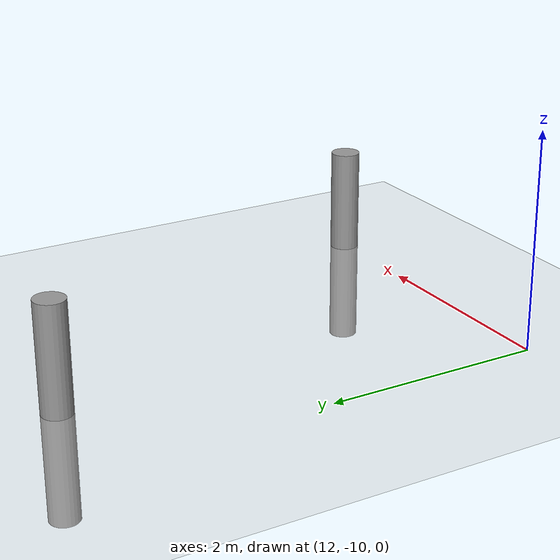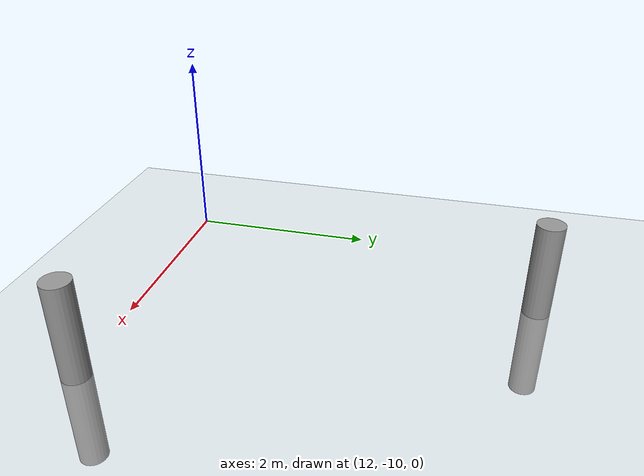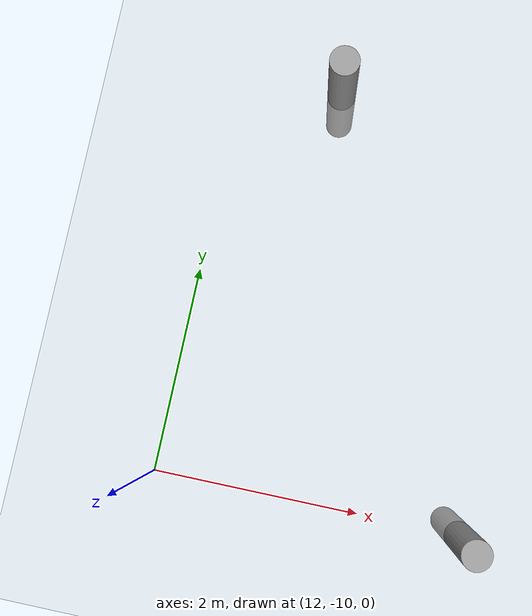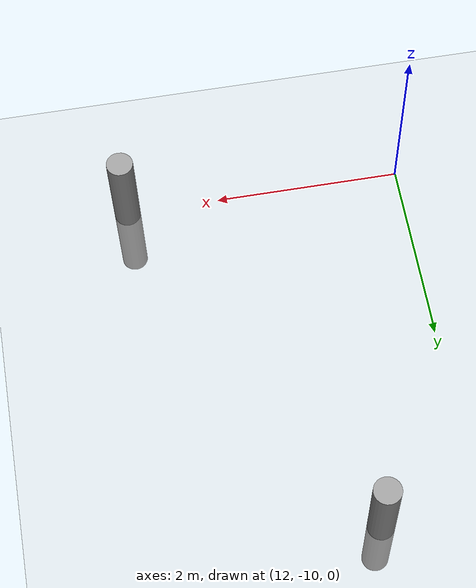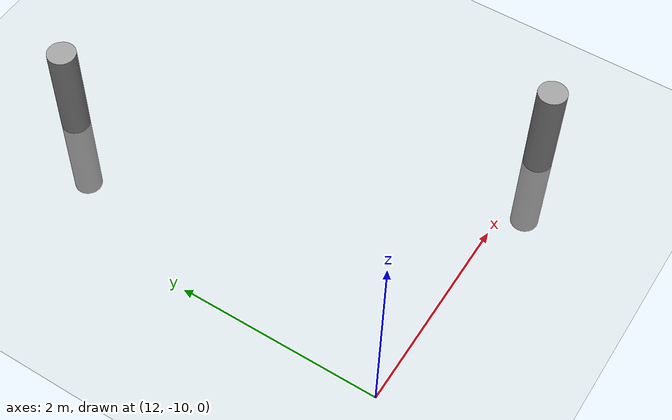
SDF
<sdf version="1.6">
 <world name="default">
  <model name="ground_plane">
   <static>1</static>
   <link name="link">
    <collision name="collision">
     <geometry><plane><normal>0 0 1</normal><size>100 100</size></plane></geometry>
     <surface><friction><ode><mu>100</mu><mu2>50</mu2></ode></friction></surface>
    </collision>
    <visual name="visual">
     <cast_shadows>0</cast_shadows>
     <geometry><plane><normal>0 0 1</normal><size>100 100</size></plane></geometry>
     <material>
      <script><uri>file://media/materials/scripts/gazebo.material</uri><name>Gazebo/Grey</name></script>
     </material>
    </visual>
   </link>
  </model>
  <model name="my_cylinder014_clone_31">
   <pose>15 -10 0 0 -0 0</pose>
   <link name="my_cylinder014::link">
    <inertial>
     <mass>1</mass>
     <inertia><ixx>0.145833</ixx><ixy>0</ixy><ixz>0</ixz><iyy>0.145833</iyy><iyz>0</iyz><izz>0.125</izz></inertia>
    </inertial>
    <visual name="visual">
     <geometry><cylinder><radius>0.14</radius><length>2</length></cylinder></geometry>
     <material>
      <script><name>Gazebo/Grey</name><uri>file://media/materials/scripts/gazebo.material</uri></script>
      <ambient>0.3 0.3 0.3 1</ambient>
      <diffuse>0.7 0.7 0.7 1</diffuse>
      <specular>1 0.01 0.01 1</specular>
      <emissive>0 0 0 1</emissive>
      <shader type="vertex"><normal_map>__default__</normal_map></shader>
     </material>
    </visual>
    <collision name="collision">
     <geometry><cylinder><radius>0.14</radius><length>2</length></cylinder></geometry>
     <surface>
      <friction>
       <ode><mu>1</mu><mu2>1</mu2><fdir1>0 0 0</fdir1><slip1>0</slip1><slip2>0</slip2></ode>
       <torsional>
        <coefficient>1</coefficient>
        <patch_radius>0</patch_radius>
        <surface_radius>0</surface_radius>
        <use_patch_radius>1</use_patch_radius>
        <ode><slip>0</slip></ode>
       </torsional>
      </friction>
      <bounce><restitution_coefficient>0</restitution_coefficient><threshold>1e+06</threshold></bounce>
      <contact>
       <collide_without_contact>0</collide_without_contact>
       <collide_without_contact_bitmask>1</collide_without_contact_bitmask>
       <collide_bitmask>1</collide_bitmask>
       <ode>
        <soft_cfm>0</soft_cfm>
        <soft_erp>0.2</soft_erp>
        <kp>1e+13</kp>
        <kd>1</kd>
        <max_vel>0.01</max_vel>
        <min_depth>0</min_depth>
       </ode>
       <bullet>
        <split_impulse>1</split_impulse>
        <split_impulse_penetration_threshold>-0.01</split_impulse_penetration_threshold>
        <soft_cfm>0</soft_cfm>
        <soft_erp>0.2</soft_erp>
        <kp>1e+13</kp>
        <kd>1</kd>
       </bullet>
      </contact>
     </surface>
    </collision>
   </link>
   <static>1</static>
  </model>
  <model name="my_cylinder014_clone_46">
   <pose>13 -6 0 0 -0 0</pose>
   <link name="my_cylinder014::link">
    <inertial>
     <mass>1</mass>
     <inertia><ixx>0.145833</ixx><ixy>0</ixy><ixz>0</ixz><iyy>0.145833</iyy><iyz>0</iyz><izz>0.125</izz></inertia>
    </inertial>
    <visual name="visual">
     <geometry><cylinder><radius>0.14</radius><length>2</length></cylinder></geometry>
     <material>
      <script><name>Gazebo/Grey</name><uri>file://media/materials/scripts/gazebo.material</uri></script>
      <ambient>0.3 0.3 0.3 1</ambient>
      <diffuse>0.7 0.7 0.7 1</diffuse>
      <specular>1 0.01 0.01 1</specular>
      <emissive>0 0 0 1</emissive>
      <shader type="vertex"><normal_map>__default__</normal_map></shader>
     </material>
    </visual>
    <collision name="collision">
     <geometry><cylinder><radius>0.14</radius><length>2</length></cylinder></geometry>
     <surface>
      <friction>
       <ode><mu>1</mu><mu2>1</mu2><fdir1>0 0 0</fdir1><slip1>0</slip1><slip2>0</slip2></ode>
       <torsional>
        <coefficient>1</coefficient>
        <patch_radius>0</patch_radius>
        <surface_radius>0</surface_radius>
        <use_patch_radius>1</use_patch_radius>
        <ode><slip>0</slip></ode>
       </torsional>
      </friction>
      <bounce><restitution_coefficient>0</restitution_coefficient><threshold>1e+06</threshold></bounce>
      <contact>
       <collide_without_contact>0</collide_without_contact>
       <collide_without_contact_bitmask>1</collide_without_contact_bitmask>
       <collide_bitmask>1</collide_bitmask>
       <ode>
        <soft_cfm>0</soft_cfm>
        <soft_erp>0.2</soft_erp>
        <kp>1e+13</kp>
        <kd>1</kd>
        <max_vel>0.01</max_vel>
        <min_depth>0</min_depth>
       </ode>
       <bullet>
        <split_impulse>1</split_impulse>
        <split_impulse_penetration_threshold>-0.01</split_impulse_penetration_threshold>
        <soft_cfm>0</soft_cfm>
        <soft_erp>0.2</soft_erp>
        <kp>1e+13</kp>
        <kd>1</kd>
       </bullet>
      </contact>
     </surface>
    </collision>
   </link>
   <static>1</static>
  </model>
  <model name="my_cylinder014_clone_31">
   <pose>15 -10 0 0 -0 0</pose>
   <link name="my_cylinder014::link">
    <inertial>
     <mass>1</mass>
     <inertia><ixx>0.145833</ixx><ixy>0</ixy><ixz>0</ixz><iyy>0.145833</iyy><iyz>0</iyz><izz>0.125</izz></inertia>
    </inertial>
    <visual name="visual">
     <geometry><cylinder><radius>0.14</radius><length>2</length></cylinder></geometry>
     <material>
      <script><name>Gazebo/Grey</name><uri>file://media/materials/scripts/gazebo.material</uri></script>
      <ambient>0.3 0.3 0.3 1</ambient>
      <diffuse>0.7 0.7 0.7 1</diffuse>
      <specular>1 0.01 0.01 1</specular>
      <emissive>0 0 0 1</emissive>
      <shader type="vertex"><normal_map>__default__</normal_map></shader>
     </material>
    </visual>
    <collision name="collision">
     <geometry><cylinder><radius>0.14</radius><length>2</length></cylinder></geometry>
     <surface>
      <friction>
       <ode><mu>1</mu><mu2>1</mu2><fdir1>0 0 0</fdir1><slip1>0</slip1><slip2>0</slip2></ode>
       <torsional>
        <coefficient>1</coefficient>
        <patch_radius>0</patch_radius>
        <surface_radius>0</surface_radius>
        <use_patch_radius>1</use_patch_radius>
        <ode><slip>0</slip></ode>
       </torsional>
      </friction>
      <bounce><restitution_coefficient>0</restitution_coefficient><threshold>1e+06</threshold></bounce>
      <contact>
       <collide_without_contact>0</collide_without_contact>
       <collide_without_contact_bitmask>1</collide_without_contact_bitmask>
       <collide_bitmask>1</collide_bitmask>
       <ode>
        <soft_cfm>0</soft_cfm>
        <soft_erp>0.2</soft_erp>
        <kp>1e+13</kp>
        <kd>1</kd>
        <max_vel>0.01</max_vel>
        <min_depth>0</min_depth>
       </ode>
       <bullet>
        <split_impulse>1</split_impulse>
        <split_impulse_penetration_threshold>-0.01</split_impulse_penetration_threshold>
        <soft_cfm>0</soft_cfm>
        <soft_erp>0.2</soft_erp>
        <kp>1e+13</kp>
        <kd>1</kd>
       </bullet>
      </contact>
     </surface>
    </collision>
   </link>
   <static>1</static>
  </model>
 </world>
</sdf>
